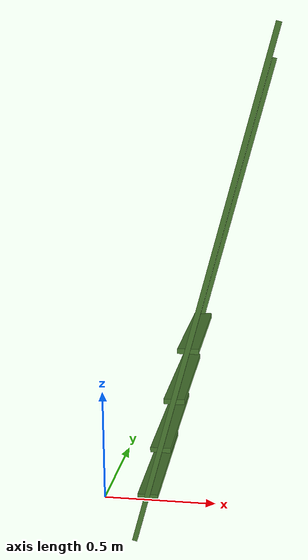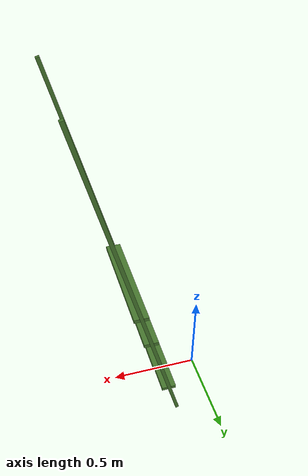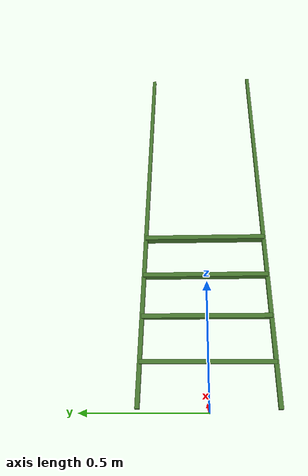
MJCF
<mujoco model="Stepladder">
  <compiler angle="radian" autolimits="true"/>

  <worldbody>
    <body name="stepladder_body" pos="0.2 0 0">
      <geom size="0.01 1 0.01" pos="0.258819 0.3 0.965926" quat="0.701057 0.701057 0.092296 -0.092296" type="box" rgba="0.3 0.5 0.2 1"
            condim="3" group="1"/>
      <geom size="0.01 1 0.01" pos="0.258819 -0.3 0.965926" quat="0.701057 0.701057 0.092296 -0.092296" type="box" rgba="0.3 0.5 0.2 1"
            condim="3" group="1"/>
      <geom size="0.04 0.3 0.01" pos="0.0535898 0 0.19" type="box" rgba="0.3 0.5 0.2 1"
            condim="3" group="1"/>
      <geom size="0.04 0.3 0.01" pos="0.10718 0 0.39" type="box" rgba="0.3 0.5 0.2 1"
            condim="3" group="1"/>
      <geom size="0.04 0.3 0.01" pos="0.16077 0 0.59" type="box" rgba="0.3 0.5 0.2 1"
            condim="3" group="1"/>
      <geom size="0.04 0.3 0.01" pos="0.214359 0 0.79" type="box" rgba="0.3 0.5 0.2 1"
            condim="3" group="1"/>
    </body>
  </worldbody>
</mujoco>
